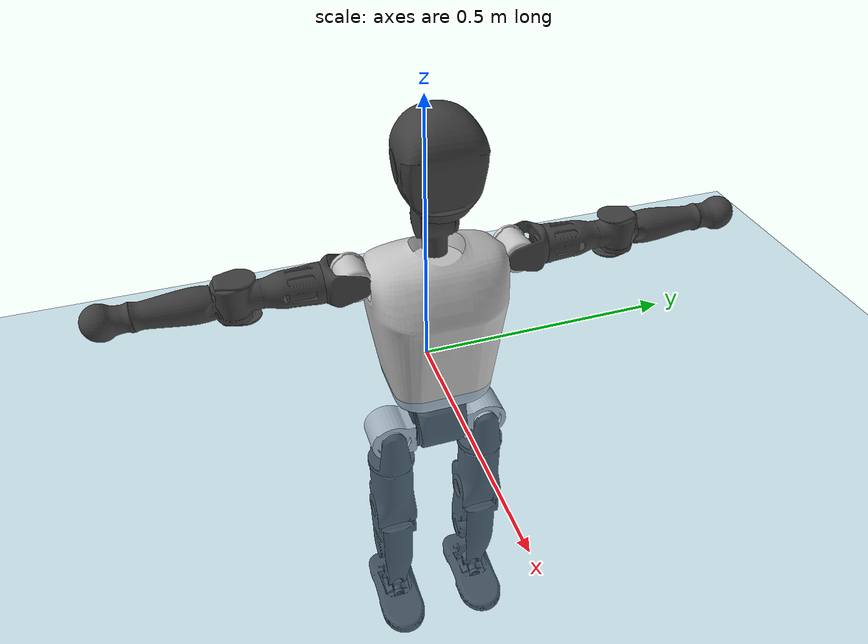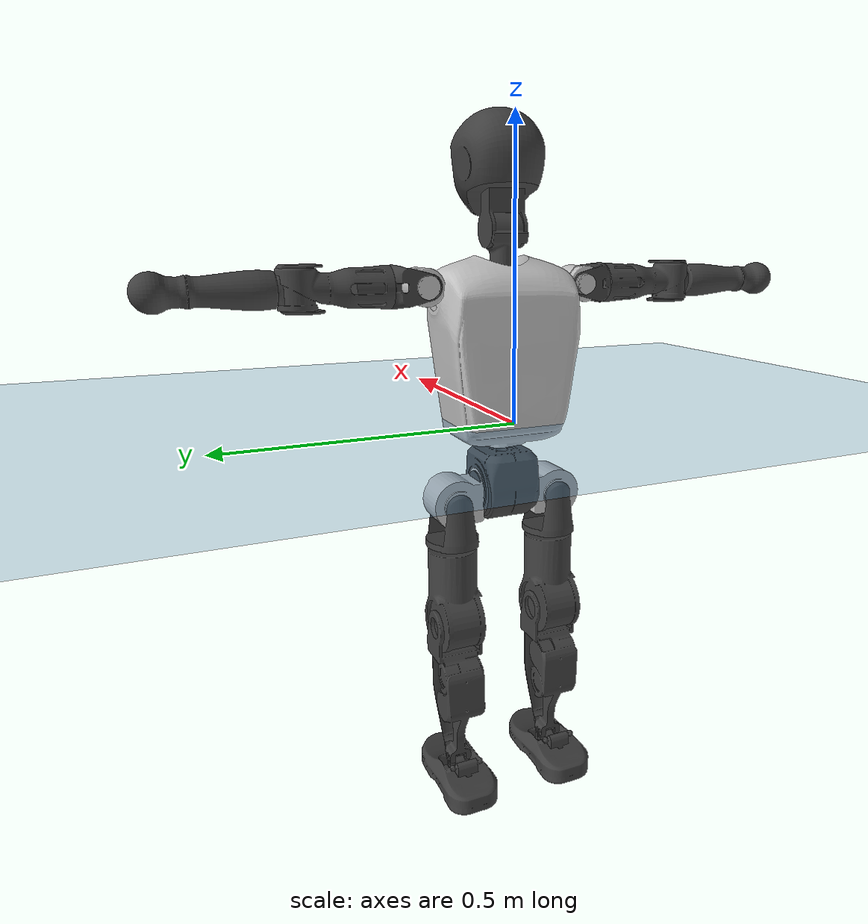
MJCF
<mujoco model="T1">
  <compiler angle="radian" assetdir="assets" balanceinertia="true" inertiafromgeom="false"/>

  <option timestep="0.005" density="1.2" viscosity="2e-05"/>

  <size nkey="1"/>

  <visual>
    <quality shadowsize="8192"/>
    <map shadowclip="0.5"/>
  </visual>

  <default>
    <default class="/">
      <joint armature="0.01" damping="0.01" frictionloss="0.1"/>
      <geom contype="0" conaffinity="0" group="1" solref="-1000 -80"/>
      <site size="0.01 0.005 0.005" group="5"/>
      <general forcelimited="true" biastype="affine" gainprm="25" biasprm="0 -25 -0.6"/>
      <default class="t1">
        <geom rgba="0.25 0.25 0.25 1"/>
        <default class="visual">
          <geom type="mesh" group="2"/>
        </default>
        <default class="collision">
          <geom group="3"/>
        </default>
        <default class="foot">
          <geom size="0.1115 0.05 0.015" type="box" condim="6" group="4" priority="1" solimp="0.015 1 0.015"/>
        </default>
        <default class="reward_collision_sphere">
          <geom group="5" rgba="1 0 0 1"/>
        </default>
      </default>
    </default>
  </default>

  <asset>
    <texture type="skybox" colorspace="auto" name="//unnamed_texture_0" builtin="gradient" rgb1="0.95 0.95 0.95" rgb2="0.95 0.95 0.95" width="100" height="600"/>
    <texture type="2d" colorspace="auto" name="texplane" builtin="checker" rgb1="0.345 0.575 0.748" rgb2="0.345 0.575 0.748" markrgb="1 1 1" width="512" height="512"/>
    <material name="MatPlane" class="/" texture="texplane" texuniform="true" texrepeat="2 2" specular="0.9"/>
    <mesh name="Trunk" class="/" file="Trunk.stl"/>
    <mesh name="H1" class="/" file="H1.stl"/>
    <mesh name="H2" class="/" file="H2.stl"/>
    <mesh name="AL1" class="/" file="AL1.stl"/>
    <mesh name="AL2" class="/" file="AL2.stl"/>
    <mesh name="AL3" class="/" file="AL3.stl"/>
    <mesh name="left_hand_link" class="/" file="left_hand_link.stl"/>
    <mesh name="AR1" class="/" file="AR1.stl"/>
    <mesh name="AR2" class="/" file="AR2.stl"/>
    <mesh name="AR3" class="/" file="AR3.stl"/>
    <mesh name="right_hand_link" class="/" file="right_hand_link.stl"/>
    <mesh name="Waist" class="/" file="Waist.stl"/>
    <mesh name="Hip_Pitch_Left" class="/" file="Hip_Pitch_Left.stl"/>
    <mesh name="Hip_Roll_Left" class="/" file="Hip_Roll_Left.stl"/>
    <mesh name="Hip_Yaw_Left" class="/" file="Hip_Yaw_Left.stl"/>
    <mesh name="Shank_Left" class="/" file="Shank_Left.stl"/>
    <mesh name="Ankle_Cross_Left" class="/" file="Ankle_Cross_Left.stl"/>
    <mesh name="left_foot_link" class="/" file="left_foot_link.stl"/>
    <mesh name="Hip_Pitch_Right" class="/" file="Hip_Pitch_Right.stl"/>
    <mesh name="Hip_Roll_Right" class="/" file="Hip_Roll_Right.stl"/>
    <mesh name="Hip_Yaw_Right" class="/" file="Hip_Yaw_Right.stl"/>
    <mesh name="Shank_Right" class="/" file="Shank_Right.stl"/>
    <mesh name="Ankle_Cross_Right" class="/" file="Ankle_Cross_Right.stl"/>
    <mesh name="right_foot_link" class="/" file="right_foot_link.stl"/>
  </asset>

  <worldbody>
    <geom name="floor" class="/" size="100 100 0.125" type="plane" group="0" material="MatPlane"/>
    <light name="toplight_shadow" class="/" pos="0 0 5" dir="0.0990148 0.0990148 -0.990148" type="directional" ambient="0.04 0.04 0.04" diffuse="0.55 0.55 0.55" specular="0.12 0.12 0.12"/>
    <light name="toplight_fill" class="/" pos="0 0 5" dir="0.0990148 0.0990148 -0.990148" type="directional" castshadow="false" ambient="0.04 0.04 0.04" diffuse="0.3 0.3 0.3" specular="0.08 0.08 0.08"/>
    <body name="trunk" childclass="t1" pos="0.000557173 -2.06336e-05 -0.000563642" quat="1 -5.44378e-05 -7.3091e-05 -2.32814e-05">
      <inertial pos="0.0445511 -0.000202926 0.110164" quat="0.999961 0.000206117 -0.00877207 -0.00031993" mass="9.347" diaginertia="0.0342014 0.0485144 0.0736185"/>
      <joint name="//unnamed_joint_0" type="free" armature="0" damping="0" frictionloss="0"/>
      <geom name="//unnamed_geom_1" class="visual" rgba="0.76 0.76 0.76 1" mesh="Trunk"/>
      <geom name="//unnamed_geom_2" class="collision" size="0.0695592 0.0927457 0.139118" pos="0.0492012 0 0.126448" type="box"/>
      <geom name="//unnamed_geom_3" class="reward_collision_sphere" size="0.106658" pos="0.0492012 0 0.105374"/>
      <geom name="//unnamed_geom_4" class="reward_collision_sphere" size="0.0139118" pos="0.0492012 0.077232 0"/>
      <geom name="//unnamed_geom_5" class="reward_collision_sphere" size="0.0139118" pos="0.0492012 -0.077232 0"/>
      <geom name="//unnamed_geom_6" class="reward_collision_sphere" size="0.0139118" pos="0.0492012 0.0972215 0.189673"/>
      <geom name="//unnamed_geom_7" class="reward_collision_sphere" size="0.0139118" pos="0.0492012 -0.0972215 0.189673"/>
      <site name="imu" pos="-0.00281485 -0.000439263 0.000939899" size="0.00927457"/>
      <camera name="track" pos="0 -1.81722 0" quat="0.707107 0.707107 0 0" mode="trackcom"/>
      <camera name="ego_camera" pos="0.100042 0 0.44257" quat="-0.5 -0.5 0.5 0.5"/>
      <body name="H1" pos="0.0506544 -0.000194201 0.256543" quat="1 1.68659e-05 3.98446e-05 3.91548e-05">
        <inertial pos="-0.0010044 -0.0020764 0.0599531" quat="0.762498 -0.0086516 -0.00135479 0.646932" mass="0.355935" diaginertia="9.09876e-05 0.000138625 0.000197026"/>
        <joint name="AAHead_yaw" pos="0 0 0" axis="0.00172772 -0.000458354 0.999998" range="-1.55688 1.57791" armature="0.00940773" damping="0.00618326" frictionloss="0.0982255"/>
        <geom name="//unnamed_geom_8" class="visual" mesh="H1"/>
        <body name="H2" pos="-0.000627001 -0.000187863 0.0643188" quat="1 -2.84457e-05 1.94961e-06 -1.10374e-05">
          <inertial pos="0.00599889 0.00111746 0.104064" quat="0.988617 0.105202 -0.0719824 -0.0799208" mass="0.502771" diaginertia="0.000763032 0.00118326 0.00225478"/>
          <joint name="Head_pitch" pos="0 0 0" axis="0.00234762 -0.999996 -0.00131201" range="-1.21896 0.350513" armature="0.00898227" damping="0.00686435" frictionloss="0.091947"/>
          <geom name="//unnamed_geom_9" class="visual" mesh="H2"/>
          <geom name="//unnamed_geom_10" class="collision" size="0.0741965" pos="0.0082002 0 0.115911"/>
          <geom name="//unnamed_geom_11" class="reward_collision_sphere" size="0.0834711" pos="0.0164004 0 0.105374"/>
        </body>
      </body>
      <body name="AL1" pos="0.0482459 0.0976055 0.230994" quat="1 4.88837e-06 0.000454884 9.34405e-06">
        <inertial pos="0.000245643 0.0406631 0.000248205" quat="0.504692 0.49169 -0.505282 0.498214" mass="0.421322" diaginertia="0.000508344 0.000794194 0.000380957"/>
        <joint name="Left_Shoulder_Pitch" pos="0 0 0" axis="-0.000831257 0.999994 0.00341452" range="-3.30554 1.20758" armature="0.00934723" damping="0.00802254" frictionloss="0.0904372"/>
        <geom name="//unnamed_geom_12" class="visual" rgba="0.76 0.76 0.76 1" mesh="AL1"/>
        <body name="AL2" pos="0.00109518 0.0435282 0.000850206" quat="1 -5.97308e-06 3.58258e-05 -1.24283e-05">
          <inertial pos="0.00262578 0.0353065 -9.37648e-05" quat="0.487503 0.512093 -0.488215 0.511613" mass="0.127161" diaginertia="0.000148235 0.00021494 0.000228087"/>
          <joint name="Left_Shoulder_Roll" pos="0 0 0" axis="-0.999997 -0.000862187 -0.00213708" range="-1.55608 1.72236" armature="0.0092184" damping="0.00454559" frictionloss="0.0916745"/>
          <geom name="//unnamed_geom_13" class="visual" mesh="AL2"/>
          <body name="AL3" pos="0.000610605 0.0550272 -0.00023239" quat="1 -4.32802e-05 0.000147247 1.92596e-05">
            <inertial pos="-0.0011583 0.0772792 -0.000105944" quat="0.707117 0.707093 0.00138721 0.00178977" mass="0.805968" diaginertia="0.00471239 0.00787118 0.000803884"/>
            <joint name="Left_Elbow_Pitch" pos="0 0 0" axis="0.00118584 -0.999999 3.15982e-06" range="-2.27804 2.26844" armature="0.00963858" damping="0.0098638" frictionloss="0.0904213"/>
            <geom name="//unnamed_geom_14" class="visual" mesh="AL3"/>
            <geom name="//unnamed_geom_15" class="collision" size="0.0278237 0.0695592" pos="0 0.0454306 0" quat="0.707105 0.707108 0 0" type="cylinder"/>
            <geom name="//unnamed_geom_16" class="reward_collision_sphere" size="0.0333884"/>
            <body name="left_hand_link" pos="0.00122979 0.133762 -0.000100286" quat="1 -0.000123003 2.21182e-06 1.73025e-06">
              <inertial pos="-4.1872e-05 0.100398 -0.00037378" quat="0.707996 0.706203 0.00196777 0.00388045" mass="0.25945" diaginertia="0.00300222 0.0050305 0.000277431"/>
              <joint name="Left_Elbow_Yaw" pos="0 0 0" axis="0.00376057 0.00258014 0.99999" range="-2.45467 0.0124769" armature="0.00919487" damping="0.0111502" frictionloss="0.0918627"/>
              <geom name="//unnamed_geom_17" class="visual" mesh="left_hand_link"/>
              <geom name="//unnamed_geom_18" class="collision" size="0.0278237 0.0811525" pos="0 0.11812 0" quat="0.707105 0.707108 0 0" type="cylinder"/>
              <geom name="//unnamed_geom_19" class="reward_collision_sphere" size="0.0463728"/>
              <geom name="//unnamed_geom_20" class="reward_collision_sphere" size="0.032461" pos="0 0.0999473 0"/>
              <geom name="//unnamed_geom_21" class="reward_collision_sphere" size="0.032461" pos="0 0.195352 0"/>
            </body>
          </body>
        </body>
      </body>
      <body name="AR1" pos="0.0457482 -0.0963081 0.231097" quat="1 -0.000155394 0.000325484 -0.000100282">
        <inertial pos="-0.00137234 -0.0411578 0.000700694" quat="0.505631 0.495884 -0.502482 0.495932" mass="0.427255" diaginertia="0.000511698 0.000803737 0.000384466"/>
        <joint name="Right_Shoulder_Pitch" pos="0 0 0" axis="0.000777869 -1 0.000478345" range="-1.23409 3.31438" armature="0.00911188" damping="0.004737" frictionloss="0.0908036"/>
        <geom name="//unnamed_geom_22" class="visual" rgba="0.76 0.76 0.76 1" mesh="AR1"/>
        <body name="AR2" pos="-0.000673767 -0.040998 -0.000169739" quat="1 -0.000319331 -0.000488182 -6.86154e-05">
          <inertial pos="0.00399419 -0.0344291 0.00132962" quat="0.512597 0.485728 -0.509869 0.491269" mass="0.13042" diaginertia="0.000151272 0.00021804 0.000229486"/>
          <joint name="Right_Shoulder_Roll" pos="0 0 0" axis="-0.999996 0.000586776 -0.00279335" stiffness="0.00364605" range="-1.73651 1.57757" armature="0.00908201" damping="0.00555101" frictionloss="0.0908251"/>
          <geom name="//unnamed_geom_23" class="visual" mesh="AR2"/>
          <body name="AR3" pos="-0.000405962 -0.0551139 -3.16627e-05" quat="1 6.43474e-05 -6.66295e-05 0.000125316">
            <inertial pos="0.000670129 -0.0778265 0.000229791" quat="0.707793 0.706419 0.000872217 0.000412598" mass="0.82129" diaginertia="0.00478203 0.00800434 0.000818428"/>
            <joint name="Right_Elbow_Pitch" pos="0 0 0" axis="-0.000413283 1 0.00018921" stiffness="0.00235537" range="-2.28086 2.26593" armature="0.00923285" damping="0.00912873" frictionloss="0.098218"/>
            <geom name="//unnamed_geom_24" class="visual" mesh="AR3"/>
            <geom name="//unnamed_geom_25" class="collision" size="0.0278237 0.0695592" pos="0 -0.0454306 0" quat="0.707105 0.707108 0 0" type="cylinder"/>
            <geom name="//unnamed_geom_26" class="reward_collision_sphere" size="0.0333884"/>
            <body name="right_hand_link" pos="0.000370495 -0.132884 0.000122721" quat="1 2.37939e-05 0.000103665 -1.47016e-05">
              <inertial pos="-0.000239998 -0.099554 0.000411543" quat="0.706243 0.707969 -0.000375738 0.000327513" mass="0.264848" diaginertia="0.00305334 0.00508791 0.000284844"/>
              <joint name="Right_Elbow_Yaw" pos="0 0 0" axis="-0.00168984 -0.000746457 0.999998" range="-0.000706283 2.44051" armature="0.00960485" damping="0.00545364" frictionloss="0.0884919"/>
              <geom name="//unnamed_geom_27" class="visual" mesh="right_hand_link"/>
              <geom name="//unnamed_geom_28" class="collision" size="0.0278237 0.0811525" pos="0 -0.11812 0" quat="0.707105 0.707108 0 0" type="cylinder"/>
              <geom name="//unnamed_geom_29" class="reward_collision_sphere" size="0.0463728"/>
              <geom name="//unnamed_geom_30" class="reward_collision_sphere" size="0.032461" pos="0 -0.0999473 0"/>
              <geom name="//unnamed_geom_31" class="reward_collision_sphere" size="0.032461" pos="0 -0.195352 0"/>
            </body>
          </body>
        </body>
      </body>
      <body name="Waist" pos="0.0510352 2.75939e-05 -0.121281" quat="1 -0.000193683 0.000248073 -0.000194069">
        <inertial pos="0.00123529 -0.00115491 0.00860324" quat="0.983725 0.000308059 -0.179566 0.00638154" mass="2.05057" diaginertia="0.00199439 0.00328279 0.00613534"/>
        <joint name="Waist" pos="0 0 0" axis="0.00115646 0.00431041 0.99999" range="-1.5711 1.57825" armature="0.0093188" damping="0.00956901" frictionloss="0.0937107"/>
        <geom name="//unnamed_geom_32" class="visual" mesh="Waist"/>
        <body name="Hip_Pitch_Left" pos="0.000714944 0.0963524 0.000802007" quat="1 7.46865e-05 0.000376599 -2.8393e-05">
          <inertial pos="0.00127536 -0.00715812 -0.0193461" quat="0.97494 0.222012 0.0140915 0.00176004" mass="0.804927" diaginertia="0.000659524 0.000888832 0.00160886"/>
          <joint name="Left_Hip_Pitch" pos="0 0 0" axis="-0.00423284 0.999985 0.00358941" range="-1.81164 1.56197" armature="0.00885153" damping="0.00679979" frictionloss="0.0913296"/>
          <geom name="//unnamed_geom_33" class="visual" rgba="0.76 0.76 0.76 1" mesh="Hip_Pitch_Left"/>
          <body name="Hip_Roll_Left" pos="0.000835442 0.000754822 -0.0233438" quat="1 5.44491e-05 1.78119e-06 0.00031257">
            <inertial pos="0.00101989 -0.000956712 -0.055776" quat="0.707177 -0.00596668 -0.00605762 0.706986" mass="0.309354" diaginertia="0.000649973 0.000937667 0.000683311"/>
            <joint name="Left_Hip_Roll" pos="0 0 0" axis="-0.999982 -0.00573658 -0.00186313" range="-1.57873 0.184483" armature="0.00945515" damping="0.00261044" frictionloss="0.0906034"/>
            <geom name="//unnamed_geom_34" class="visual" mesh="Hip_Roll_Left"/>
            <geom name="//unnamed_geom_35" class="reward_collision_sphere" size="0.0510101"/>
            <body name="Hip_Yaw_Left" pos="-0.000490002 0.000580906 -0.0874906" quat="1 -0.000318258 -0.000321405 -5.40975e-05">
              <inertial pos="-0.00512232 -0.00021524 -0.0935368" quat="0.697003 -0.0337471 -0.0305196 0.715623" mass="1.73659" diaginertia="0.00960887 0.0154515 0.00333561"/>
              <joint name="Left_Hip_Yaw" pos="0 0 0" axis="-0.00149288 -0.00139767 -0.999998" range="-1.02554 0.998137" armature="0.00920094" damping="0.00792284" frictionloss="0.0932528"/>
              <geom name="//unnamed_geom_36" class="visual" mesh="Hip_Yaw_Left"/>
              <geom name="//unnamed_geom_37" class="collision" size="0.0463728 0.0741965" type="cylinder"/>
              <body name="Shank_Left" pos="-0.01196 -3.52763e-05 -0.144153" quat="1 9.12801e-06 1.50403e-05 -6.61929e-06">
                <inertial pos="-0.00441452 0.000715252 -0.131254" quat="0.997541 -0.000207373 -0.0200869 0.0671481" mass="1.38681" diaginertia="0.0128088 0.0212629 0.0024379"/>
                <joint name="Left_Knee_Pitch" pos="0 0 0" axis="-0.000496208 0.999988 0.0048857" stiffness="0.000210279" range="-0.000142452 2.35705" armature="0.0089144" damping="0.0114357" frictionloss="0.0941897"/>
                <geom name="//unnamed_geom_38" class="visual" mesh="Shank_Left"/>
                <geom name="//unnamed_geom_39" class="collision" size="0.0463728 0.0695592" pos="0 0 -0.126448" type="cylinder"/>
                <geom name="//unnamed_geom_40" class="reward_collision_sphere" size="0.0602847"/>
                <body name="Ankle_Cross_Left" pos="-0.000363112 -0.000164188 -0.294151" quat="1 -0.000245966 -0.000215532 0.000410643">
                  <inertial pos="-0.00403279 0.000733327 -0.00935507" quat="0.442815 0.552084 0.550908 0.442288" mass="0.0586157" diaginertia="1.09012e-05 1.59164e-05 1.46617e-05"/>
                  <joint name="Left_Ankle_Pitch" pos="0 0 0" axis="0.000219393 1 0.000583366" range="-0.871393 0.346401" armature="0.0097954" damping="0.00844075" frictionloss="0.0913261"/>
                  <geom name="//unnamed_geom_41" class="visual" mesh="Ankle_Cross_Left"/>
                  <body name="left_foot_link" pos="0.000413393 0.000464481 -0.0125381" quat="1 -2.41493e-06 -0.000524439 -0.000155935">
                    <inertial pos="0.000345855 0.00102127 -0.0100552" quat="0.00013985 0.621663 -0.00134551 0.783284" mass="0.550876" diaginertia="0.00102255 0.00149057 0.00287127"/>
                    <joint name="Left_Ankle_Roll" pos="0 0 0" axis="-0.999964 -0.000883113 -0.00848117" range="-0.441258 0.423775" armature="0.00926579" damping="0.00914637" frictionloss="0.091145"/>
                    <geom name="//unnamed_geom_42" class="visual" mesh="left_foot_link"/>
                    <geom name="left_foot" class="foot" size="0.101354 0.0472349 0.0136458" pos="0.0082002 0 -0.0158061"/>
                    <geom name="//unnamed_geom_44" class="reward_collision_sphere" size="0.0482277" pos="0.0082002 0 -0.0158061"/>
                    <geom name="//unnamed_geom_45" class="reward_collision_sphere" size="0.0278237" pos="0.0779019 -0.0208981 -0.0158061"/>
                    <geom name="//unnamed_geom_46" class="reward_collision_sphere" size="0.0278237" pos="-0.0574014 -0.0208981 -0.0158061"/>
                    <site name="left_foot" class="foot" pos="0.0082002 0 -0.0158061" size="0.00927457"/>
                  </body>
                </body>
              </body>
            </body>
          </body>
        </body>
        <body name="Hip_Pitch_Right" pos="0.000792561 -0.0954695 -0.000950132" quat="1 -5.34122e-05 -1.23787e-05 -0.000143397">
          <inertial pos="-0.000206536 0.00669439 -0.0186258" quat="0.973417 -0.228529 0.0145694 -0.00461297" mass="0.812606" diaginertia="0.000664646 0.000898483 0.00160703"/>
          <joint name="Right_Hip_Pitch" pos="0 0 0" axis="-0.00106249 -0.999999 0.000829845" range="-1.57843 1.81611" armature="0.00951407" damping="0.00338829" frictionloss="0.0899654"/>
          <geom name="//unnamed_geom_47" class="visual" rgba="0.76 0.76 0.76 1" mesh="Hip_Pitch_Right"/>
          <body name="Hip_Roll_Right" pos="-0.000102682 0.000150932 -0.0221302" quat="1 -0.000115168 -0.000101369 -0.000226315">
            <inertial pos="0.0018794 -0.000255893 -0.0571938" quat="0.707055 -0.00608763 -0.00591191 0.707108" mass="0.303009" diaginertia="0.000648398 0.000934665 0.00066755"/>
            <joint name="Right_Hip_Roll" pos="0 0 0" axis="-0.999997 0.00189591 0.00160343" stiffness="0.000507585" range="-0.211476 1.56467" armature="0.00942655" damping="0.0057496" frictionloss="0.0893245"/>
            <geom name="//unnamed_geom_48" class="visual" mesh="Hip_Roll_Right"/>
            <geom name="//unnamed_geom_49" class="reward_collision_sphere" size="0.0510101"/>
            <body name="Hip_Yaw_Right" pos="-0.000751511 -0.000514363 -0.08664" quat="1 -1.5044e-06 6.26646e-05 9.68625e-05">
              <inertial pos="-0.0057825 -0.000490021 -0.0949954" quat="0.714355 -0.0324673 -0.0334807 0.698227" mass="1.73641" diaginertia="0.00964966 0.0156351 0.00341169"/>
              <joint name="Right_Hip_Yaw" pos="0 0 0" axis="0.00239261 0.00319836 -0.999992" stiffness="0.00243314" range="-1.00587 0.998454" armature="0.00948482" damping="0.0130135" frictionloss="0.0941223"/>
              <geom name="//unnamed_geom_50" class="visual" mesh="Hip_Yaw_Right"/>
              <geom name="//unnamed_geom_51" class="collision" size="0.0463728 0.0741965" type="cylinder"/>
              <body name="Shank_Right" pos="-0.011542 -0.000549993 -0.14233" quat="1 -6.73879e-05 6.64544e-05 4.4936e-05">
                <inertial pos="-0.0052857 7.18891e-05 -0.12925" quat="0.999307 0.00021848 -0.0244987 -0.0280378" mass="1.4339" diaginertia="0.0131623 0.0217341 0.00255618"/>
                <joint name="Right_Knee_Pitch" pos="0 0 0" axis="-0.00230185 -0.999997 0.00104692" range="-2.34717 -0.00608075" armature="0.00917672" damping="0.00592987" frictionloss="0.0908361"/>
                <geom name="//unnamed_geom_52" class="visual" mesh="Shank_Right"/>
                <geom name="//unnamed_geom_53" class="collision" size="0.0463728 0.0695592" pos="0 0 -0.126448" type="cylinder"/>
                <geom name="//unnamed_geom_54" class="reward_collision_sphere" size="0.0602847"/>
                <body name="Ankle_Cross_Right" pos="0.000849805 -0.000371393 -0.294873" quat="1 -8.90124e-05 -1.73113e-05 2.65157e-06">
                  <inertial pos="-0.00251239 -0.000682536 -0.0084107" quat="0.443138 0.550919 0.551082 0.443199" mass="0.058655" diaginertia="1.07524e-05 1.59957e-05 1.47316e-05"/>
                  <joint name="Right_Ankle_Pitch" pos="0 0 0" axis="2.97772e-05 -1 0.000205746" range="-0.367659 0.878679" armature="0.00932226" damping="0.00177325" frictionloss="0.0930331"/>
                  <geom name="//unnamed_geom_55" class="visual" mesh="Ankle_Cross_Right"/>
                  <body name="right_foot_link" pos="-0.000710743 -0.00106506 -0.0102213" quat="1 2.61013e-05 5.82466e-05 2.05553e-05">
                    <inertial pos="5.51126e-06 -0.000134626 -0.0106238" quat="5.02489e-05 0.620714 -6.98333e-05 0.784037" mass="0.543382" diaginertia="0.000987675 0.00145503 0.00276969"/>
                    <joint name="Right_Ankle_Roll" pos="0 0 0" axis="-0.999998 -0.0002965 0.00206754" range="-0.433472 0.450635" armature="0.00865955" damping="0.000183199" frictionloss="0.0896451"/>
                    <geom name="//unnamed_geom_56" class="visual" mesh="right_foot_link"/>
                    <geom name="right_foot" class="foot" size="0.100932 0.04705 0.0140171" pos="0.0082002 0 -0.0158061"/>
                    <geom name="//unnamed_geom_58" class="reward_collision_sphere" size="0.0370983"/>
                    <geom name="//unnamed_geom_59" class="reward_collision_sphere" size="0.0278237" pos="0.0082002 0 -0.0158061"/>
                    <geom name="//unnamed_geom_60" class="reward_collision_sphere" size="0.0278237" pos="0.0779019 0.0208981 -0.0158061"/>
                    <geom name="//unnamed_geom_61" class="reward_collision_sphere" size="0.0278237" pos="-0.0574014 0.0208981 -0.0158061"/>
                    <site name="right_foot" class="foot" pos="0.0082002 0 -0.0158061" size="0.00927457"/>
                  </body>
                </body>
              </body>
            </body>
          </body>
        </body>
      </body>
    </body>
  </worldbody>

  <contact>
    <pair class="/" geom1="floor" geom2="left_foot" name="//unnamed_contact_0"/>
    <pair class="/" geom1="floor" geom2="right_foot" name="//unnamed_contact_1"/>
  </contact>

  <actuator>
    <general name="AAHead_yaw" class="/" joint="AAHead_yaw" forcerange="-6.46977 6.46977" gainprm="23.5824" biasprm="0 -23.5824 -0.532202"/>
    <general name="Head_pitch" class="/" joint="Head_pitch" forcerange="-6.44723 6.44723" gainprm="23.5824" biasprm="0 -23.5824 -0.532202"/>
    <general name="Left_Shoulder_Pitch" class="/" joint="Left_Shoulder_Pitch" forcerange="-15.8811 15.8811" gainprm="23.5824" biasprm="0 -23.5824 -0.532202"/>
    <general name="Left_Shoulder_Roll" class="/" joint="Left_Shoulder_Roll" forcerange="-16.4951 16.4951" gainprm="23.5824" biasprm="0 -23.5824 -0.532202"/>
    <general name="Left_Elbow_Pitch" class="/" joint="Left_Elbow_Pitch" forcerange="-16.2574 16.2574" gainprm="23.5824" biasprm="0 -23.5824 -0.532202"/>
    <general name="Left_Elbow_Yaw" class="/" joint="Left_Elbow_Yaw" forcerange="-16.6941 16.6941" gainprm="23.5824" biasprm="0 -23.5824 -0.532202"/>
    <general name="Right_Shoulder_Pitch" class="/" joint="Right_Shoulder_Pitch" forcerange="-16.5373 16.5373" gainprm="23.5824" biasprm="0 -23.5824 -0.532202"/>
    <general name="Right_Shoulder_Roll" class="/" joint="Right_Shoulder_Roll" forcerange="-16.2934 16.2934" gainprm="23.5824" biasprm="0 -23.5824 -0.532202"/>
    <general name="Right_Elbow_Pitch" class="/" joint="Right_Elbow_Pitch" forcerange="-17.0563 17.0563" gainprm="23.5824" biasprm="0 -23.5824 -0.532202"/>
    <general name="Right_Elbow_Yaw" class="/" joint="Right_Elbow_Yaw" forcerange="-16.5698 16.5698" gainprm="23.5824" biasprm="0 -23.5824 -0.532202"/>
    <general name="Waist" class="/" joint="Waist" forcerange="-28.2292 28.2292" gainprm="23.5824" biasprm="0 -23.5824 -0.532202"/>
    <general name="Left_Hip_Pitch" class="/" joint="Left_Hip_Pitch" forcerange="-42.1688 42.1688" gainprm="23.5824" biasprm="0 -23.5824 -0.532202"/>
    <general name="Left_Hip_Roll" class="/" joint="Left_Hip_Roll" forcerange="-27.3032 27.3032" gainprm="23.5824" biasprm="0 -23.5824 -0.532202"/>
    <general name="Left_Hip_Yaw" class="/" joint="Left_Hip_Yaw" forcerange="-28.8129 28.8129" gainprm="23.5824" biasprm="0 -23.5824 -0.532202"/>
    <general name="Left_Knee_Pitch" class="/" joint="Left_Knee_Pitch" forcerange="-55.1843 55.1843" gainprm="23.5824" biasprm="0 -23.5824 -0.532202"/>
    <general name="Left_Ankle_Pitch" class="/" joint="Left_Ankle_Pitch" forcerange="-18.5766 18.5766" gainprm="23.5824" biasprm="0 -23.5824 -0.532202"/>
    <general name="Left_Ankle_Roll" class="/" joint="Left_Ankle_Roll" forcerange="-13.8141 13.8141" gainprm="23.5824" biasprm="0 -23.5824 -0.532202"/>
    <general name="Right_Hip_Pitch" class="/" joint="Right_Hip_Pitch" forcerange="-42.0921 42.0921" gainprm="23.5824" biasprm="0 -23.5824 -0.532202"/>
    <general name="Right_Hip_Roll" class="/" joint="Right_Hip_Roll" forcerange="-28.8672 28.8672" gainprm="23.5824" biasprm="0 -23.5824 -0.532202"/>
    <general name="Right_Hip_Yaw" class="/" joint="Right_Hip_Yaw" forcerange="-27.6795 27.6795" gainprm="23.5824" biasprm="0 -23.5824 -0.532202"/>
    <general name="Right_Knee_Pitch" class="/" joint="Right_Knee_Pitch" forcerange="-53.6942 53.6942" gainprm="23.5824" biasprm="0 -23.5824 -0.532202"/>
    <general name="Right_Ankle_Pitch" class="/" joint="Right_Ankle_Pitch" forcerange="-17.9208 17.9208" gainprm="23.5824" biasprm="0 -23.5824 -0.532202"/>
    <general name="Right_Ankle_Roll" class="/" joint="Right_Ankle_Roll" forcerange="-13.7542 13.7542" gainprm="23.5824" biasprm="0 -23.5824 -0.532202"/>
  </actuator>

  <sensor>
    <gyro site="imu" name="imu_angular_velocity"/>
    <velocimeter site="imu" name="imu_linear_velocity"/>
    <framelinvel objtype="site" objname="left_foot" name="left_foot_global_linear_velocity"/>
    <framelinvel objtype="site" objname="right_foot" name="right_foot_global_linear_velocity"/>
  </sensor>

  <keyframe>
    <key name="home" qpos="0 0 0.6385 1 0 0 0 0 0 0 1.4 0 -0.4 0 -1.4 0 0.4 0 -0.4 0 0 0.8 -0.4 0 0.4 0 0 -0.8 0.4 0"/>
  </keyframe>
</mujoco>
